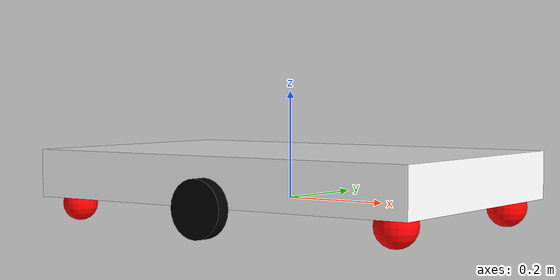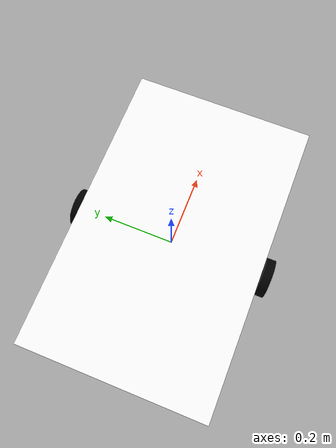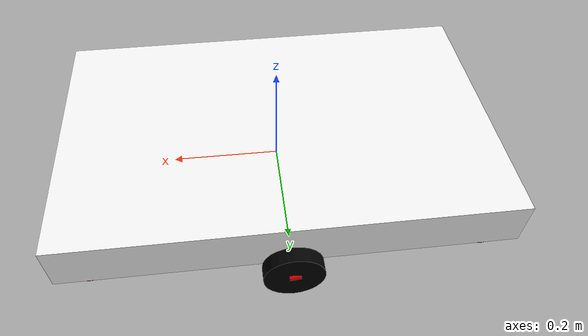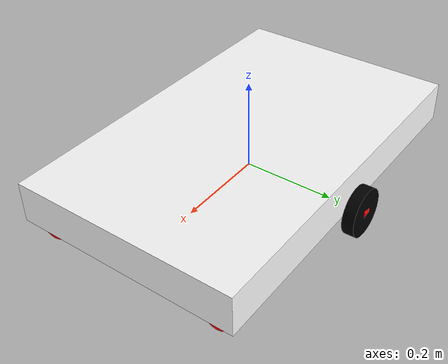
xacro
<?xml version="1.0"?>
<robot xmlns:xacro="http://www.ros.org/wiki/xacro" >

    <xacro:include filename="inertial_macros.xacro"/>

    <xacro:property name="chassis_length" value="0.80"/>
    <xacro:property name="chassis_width" value="0.50"/>
    <xacro:property name="chassis_height" value="0.09"/>
    <xacro:property name="chassis_mass" value="1.0"/>
    <xacro:property name="wheel_radius" value="0.053"/>
    <xacro:property name="wheel_thickness" value="0.026"/>
    <xacro:property name="wheel_mass" value="0.05"/>
    <xacro:property name="wheel_offset_x" value="0.40"/>
    <xacro:property name="wheel_offset_y" value="0.27"/>
    <xacro:property name="wheel_offset_z" value="0.0"/>

    <xacro:property name="caster_wheel_radius_left" value="0.038"/>
    <xacro:property name="caster_wheel_mass_left" value="0.01"/>
    <xacro:property name="caster_wheel_offset_x_left" value="0.75"/>
    <xacro:property name="caster_wheel_offset_y_left" value="0.20"/>
    <xacro:property name="caster_wheel_offset_z_left" value="-0.013"/>

    <xacro:property name="caster_wheel_radius_right" value="0.038"/>
    <xacro:property name="caster_wheel_mass_right" value="0.01"/>
    <xacro:property name="caster_wheel_offset_x_right" value="0.75"/>
    <xacro:property name="caster_wheel_offset_y_right" value="-0.20"/>
    <xacro:property name="caster_wheel_offset_z_right" value="-0.013"/>

    <xacro:property name="caster_wheel_radius_left_rear" value="0.038"/>
    <xacro:property name="caster_wheel_mass_left_rear" value="0.01"/>
    <xacro:property name="caster_wheel_offset_x_left_rear" value="0.05"/>
    <xacro:property name="caster_wheel_offset_y_left_rear" value="0.20"/>
    <xacro:property name="caster_wheel_offset_z_left_rear" value="-0.013"/>

    <xacro:property name="caster_wheel_radius_right_rear" value="0.033"/>
    <xacro:property name="caster_wheel_mass_right_rear" value="0.01"/>
    <xacro:property name="caster_wheel_offset_x_right_rear" value="0.05"/>
    <xacro:property name="caster_wheel_offset_y_right_rear" value="-0.20"/>
    <xacro:property name="caster_wheel_offset_z_right_rear" value="-0.013"/>

    <material name="white">
        <color rgba="1 1 1 1" />
    </material>

    <material name="orange">
        <color rgba="1 0.3 0.1 1"/>
    </material>

    <material name="blue">
        <color rgba="0.2 0.2 1 1"/>
    </material>

    <material name="black">
        <color rgba="0 0 0 1"/>
    </material>

    <material name="red">
        <color rgba="1 0 0 1"/>
    </material>

    <!-- BASE LINK -->

    <link name="base_link">

    </link>

    <!-- BASE_FOOTPRINT LINK -->

    <joint name="base_footprint_joint" type="fixed">
        <parent link="base_link"/>
        <child link="base_footprint"/>
        <origin xyz="0 0 0" rpy="0 0 0"/>
    </joint>

    <link name="base_footprint">
    </link>

    <!-- CHASSIS LINK -->

    <joint name="chassis_joint" type="fixed">
        <parent link="base_link"/>
        <child link="chassis"/>
        <origin xyz="${-wheel_offset_x} 0 ${-wheel_offset_z}"/>
    </joint>

    <link name="chassis">
        <visual>
            <origin xyz="${chassis_length/2} 0 ${chassis_height/2}"/>
            <geometry>
                <box size="${chassis_length} ${chassis_width} ${chassis_height}"/>
            </geometry>
            <material name="white"/>
        </visual>
        <collision>
            <origin xyz="${chassis_length/2} 0 ${chassis_height/2}"/>
            <geometry>
                <box size="${chassis_length} ${chassis_width} ${chassis_height}"/>
            </geometry>
        </collision>
        <xacro:inertial_box mass="0.5" x="${chassis_length}" y="${chassis_width}" z="${chassis_height}">
            <origin xyz="${chassis_length/2} 0 ${chassis_height/2}" rpy="0 0 0"/>
        </xacro:inertial_box>
    </link>

    <gazebo reference="chassis">
        <material>Gazebo/White</material>
    </gazebo>

    <!-- LEFT WHEEL LINK -->

    <joint name="left_wheel_joint" type="continuous">
        <parent link="base_link"/>
        <child link="left_wheel"/>
        <origin xyz="0 ${wheel_offset_y} 0" rpy="-${pi/2} 0 0" />
        <axis xyz="0 0 1"/>
    </joint>

    <link name="left_wheel">
        <visual>
            <geometry>
                <cylinder radius="${wheel_radius}" length="${wheel_thickness}"/>
            </geometry>
            <material name="black"/>
        </visual>
        <collision>
            <geometry>
                <sphere radius="${wheel_radius}"/>
            </geometry>
        </collision>
        <xacro:inertial_cylinder mass="${wheel_mass}" length="${wheel_thickness}" radius="${wheel_radius}">
            <origin xyz="0 0 0" rpy="0 0 0"/>
        </xacro:inertial_cylinder>
    </link>

    <gazebo reference="left_wheel">
        <material>Gazebo/Black</material>
    </gazebo>

    <joint name="point_joint" type="fixed">
        <parent link="left_wheel"/>
        <child link="point"/>
        <origin xyz="0 0 0" rpy="0 0 0" />
        <axis xyz="0 0 1"/>
    </joint>

    <link name="point">
        <visual>
            <origin xyz="-0.0 0 0.00" rpy="0 ${1.5} 0"/>
            <geometry>
                <cylinder radius="0.015" length="0.02"/>
            </geometry>
            <material name="red"/>
        </visual>
    </link>

    <gazebo reference="point">
        <material>Gazebo/Red</material>
    </gazebo>

    <!-- RIGHT WHEEL LINK -->

    <joint name="right_wheel_joint" type="continuous">
        <parent link="base_link"/>
        <child link="right_wheel"/>
        <origin xyz="0 ${-wheel_offset_y} 0" rpy="${pi/2} 0 0" />
        <axis xyz="0 0 -1"/>
    </joint>

    <link name="right_wheel">
        <visual>
            <geometry>
                <cylinder radius="${wheel_radius}" length="${wheel_thickness}"/>
            </geometry>
            <material name="black"/>
        </visual>
        <collision>
            <geometry>
                <sphere radius="${wheel_radius}"/>
            </geometry>
        </collision>
        <xacro:inertial_cylinder mass="${wheel_mass}" length="${wheel_thickness}" radius="${wheel_radius}">
            <origin xyz="0 0 0" rpy="0 0 0"/>
        </xacro:inertial_cylinder>
    </link>

    <gazebo reference="right_wheel">
        <material>Gazebo/Black</material>
    </gazebo>

    <!-- CASTER WHEEL LEFT LINK -->

    <joint name="caster_wheel_joint_left" type="fixed">
        <parent link="chassis"/>
        <child link="caster_wheel_left"/>
        <origin xyz="${caster_wheel_offset_x_left} ${caster_wheel_offset_y_left}
        ${caster_wheel_offset_z_left}"/>
    </joint>

    <link name="caster_wheel_left">
        <visual>
            <geometry>
                <sphere radius="${caster_wheel_radius_left}"/>
            </geometry>
            <material name="red"/>
        </visual>
        <collision>
            <geometry>
                <sphere radius="${caster_wheel_radius_left}"/>
            </geometry>
        </collision>
        <xacro:inertial_sphere mass="${caster_wheel_mass_left}" radius="${caster_wheel_radius_left}">
            <origin xyz="0 0 0" rpy="0 0 0"/>
        </xacro:inertial_sphere>
    </link>

    <gazebo reference="caster_wheel_left">
        <material>Gazebo/Red</material>
        <mu1 value="0.001"/>
        <mu2 value="0.001"/>
    </gazebo>

<!-- CASTER WHEEL RIGHT LINK -->

    <joint name="caster_wheel_joint_right" type="fixed">
        <parent link="chassis"/>
        <child link="caster_wheel_right"/>
        <origin xyz="${caster_wheel_offset_x_right} ${caster_wheel_offset_y_right}
        ${caster_wheel_offset_z_right}"/>
    </joint>

    <link name="caster_wheel_right">
        <visual>
            <geometry>
                <sphere radius="${caster_wheel_radius_right}"/>
            </geometry>
            <material name="red"/>
        </visual>
        <collision>
            <geometry>
                <sphere radius="${caster_wheel_radius_right}"/>
            </geometry>
        </collision>
        <xacro:inertial_sphere mass="${caster_wheel_mass_right}" radius="${caster_wheel_radius_right}">
            <origin xyz="0 0 0" rpy="0 0 0"/>
        </xacro:inertial_sphere>
    </link>

    <gazebo reference="caster_wheel_right">
        <material>Gazebo/Red</material>
        <mu1 value="0.001"/>
        <mu2 value="0.001"/>
    </gazebo>

    <!-- CASTER WHEEL LEFT LINK REAR -->

    <joint name="caster_wheel_joint_left_rear" type="fixed">
        <parent link="chassis"/>
        <child link="caster_wheel_left_rear"/>
        <origin xyz="${caster_wheel_offset_x_left_rear} ${caster_wheel_offset_y_left_rear}
        ${caster_wheel_offset_z_left}"/>
    </joint>

    <link name="caster_wheel_left_rear">
        <visual>
            <geometry>
                <sphere radius="${caster_wheel_radius_left_rear}"/>
            </geometry>
            <material name="red"/>
        </visual>
        <collision>
            <geometry>
                <sphere radius="${caster_wheel_radius_left_rear}"/>
            </geometry>
        </collision>
        <xacro:inertial_sphere mass="${caster_wheel_mass_left_rear}" radius="${caster_wheel_radius_left_rear}">
            <origin xyz="0 0 0" rpy="0 0 0"/>
        </xacro:inertial_sphere>
    </link>

    <gazebo reference="caster_wheel_left_rear">
        <material>Gazebo/Red</material>
        <mu1 value="0.001"/>
        <mu2 value="0.001"/>
    </gazebo>

<!-- CASTER WHEEL RIGHT LINK REAR -->

    <joint name="caster_wheel_joint_right_rear" type="fixed">
        <parent link="chassis"/>
        <child link="caster_wheel_right_rear"/>
        <origin xyz="${caster_wheel_offset_x_right_rear} ${caster_wheel_offset_y_right_rear}
        ${caster_wheel_offset_z_right_rear}"/>
    </joint>

    <link name="caster_wheel_right_rear">
        <visual>
            <geometry>
                <sphere radius="${caster_wheel_radius_right_rear}"/>
            </geometry>
            <material name="red"/>
        </visual>
        <collision>
            <geometry>
                <sphere radius="${caster_wheel_radius_right_rear}"/>
            </geometry>
        </collision>
        <xacro:inertial_sphere mass="${caster_wheel_mass_right_rear}" radius="${caster_wheel_radius_right_rear}">
            <origin xyz="0 0 0" rpy="0 0 0"/>
        </xacro:inertial_sphere>
    </link>

    <gazebo reference="caster_wheel_right_rear">
        <material>Gazebo/Red</material>
        <mu1 value="0.001"/>
        <mu2 value="0.001"/>
    </gazebo>

    <!-- imu -->
    <joint name="imu_joint" type="fixed">
        <parent link="chassis"/>
        <child link="imu_link"/>
        <origin xyz="0.40 0 0.055" rpy="0 0 0"/>
    </joint>

    <link name="imu_link">
        <visual>
            <geometry>
                <box size="0.05 0.05 0.05"/>
            </geometry>
            <material name="red"/>
        </visual>
        <collision>
            <geometry>
                <box size="0.05 0.05 0.05"/>
            </geometry>
        </collision>
        <inertial>
            <mass value="0.01"/>
            <origin xyz="0 0 0" rpy="0 0 0"/>
            <inertia ixx="0.0001" ixy="0" ixz="0" iyy="0.0001" iyz="0" izz="0.0001"/>
        </inertial>
    </link>
</robot>
